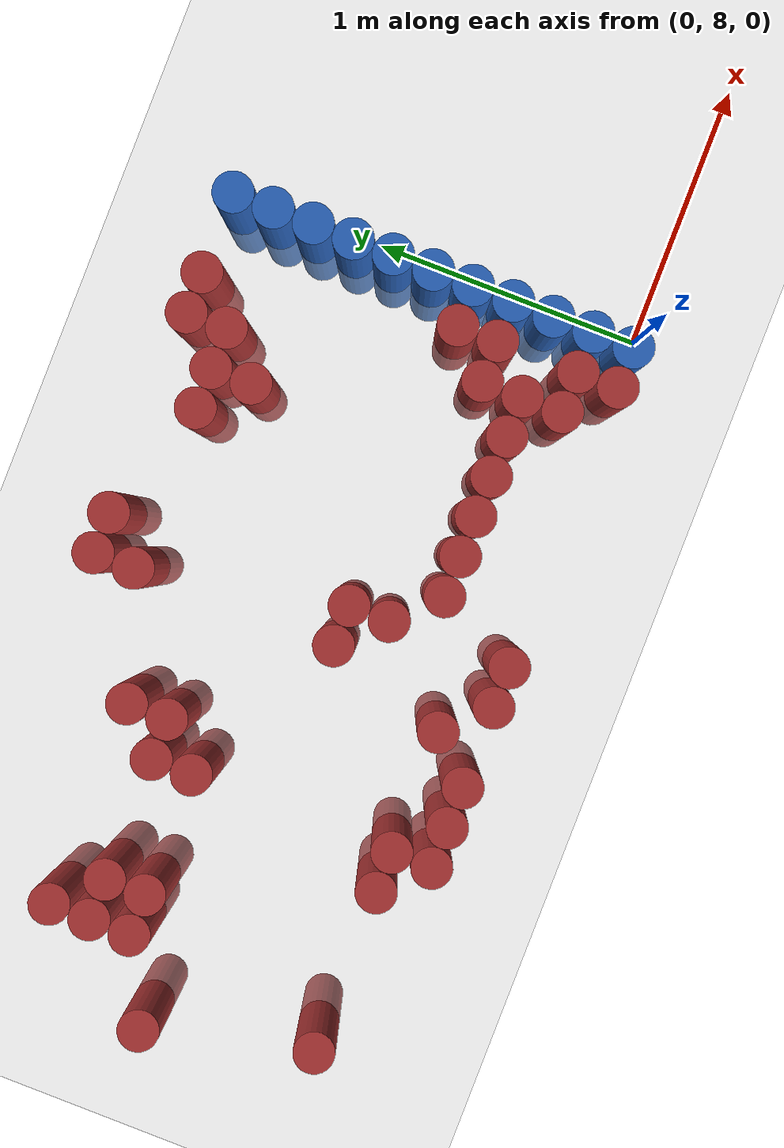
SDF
<sdf version="1.6">
 <world name="default">
  <model name="ground_plane">
   <static>1</static>
   <link name="link">
    <collision name="collision">
     <geometry><plane><normal>0 0 1</normal><size>100 100</size></plane></geometry>
     <surface><friction><ode><mu>100</mu><mu2>50</mu2></ode></friction></surface>
    </collision>
    <visual name="visual">
     <cast_shadows>0</cast_shadows>
     <geometry><plane><normal>0 0 1</normal><size>100 100</size></plane></geometry>
     <material>
      <script><uri>file://media/materials/scripts/gazebo.material</uri><name>Gazebo/Grey</name></script>
     </material>
    </visual>
   </link>
  </model>
  <model name="unit_cylinder_181">
   <static>1</static>
   <pose>-2.925000 8.775000 0.000000 0.000000 0.000000 0.000000</pose>
   <link name="link">
    <inertial>
     <mass>1</mass>
     <inertia><ixx>0.145833</ixx><ixy>0</ixy><ixz>0</ixz><iyy>0.145833</iyy><iyz>0</iyz><izz>0.125</izz></inertia>
    </inertial>
    <collision name="collision">
     <geometry><cylinder><radius>0.075000</radius><length>1</length></cylinder></geometry>
    </collision>
    <visual name="visual">
     <geometry><cylinder><radius>0.075000</radius><length>1</length></cylinder></geometry>
     <material>
      <ambient>0.648000 0.192000 0.192000 1</ambient>
      <diffuse>0.648000 0.192000 0.192000 1</diffuse>
     </material>
     <material>
      <script><name>Gazebo/Grey</name><uri>file://media/materials/scripts/gazebo.material</uri></script>
     </material>
    </visual>
   </link>
  </model>
  <model name="unit_cylinder_184">
   <static>1</static>
   <pose>-2.775000 8.175000 0.000000 0.000000 0.000000 0.000000</pose>
   <link name="link">
    <inertial>
     <mass>1</mass>
     <inertia><ixx>0.145833</ixx><ixy>0</ixy><ixz>0</ixz><iyy>0.145833</iyy><iyz>0</iyz><izz>0.125</izz></inertia>
    </inertial>
    <collision name="collision">
     <geometry><cylinder><radius>0.075000</radius><length>1</length></cylinder></geometry>
    </collision>
    <visual name="visual">
     <geometry><cylinder><radius>0.075000</radius><length>1</length></cylinder></geometry>
     <material>
      <ambient>0.648000 0.192000 0.192000 1</ambient>
      <diffuse>0.648000 0.192000 0.192000 1</diffuse>
     </material>
     <material>
      <script><name>Gazebo/Grey</name><uri>file://media/materials/scripts/gazebo.material</uri></script>
     </material>
    </visual>
   </link>
  </model>
  <model name="unit_cylinder_189">
   <static>1</static>
   <pose>-2.625000 8.925000 0.000000 0.000000 0.000000 0.000000</pose>
   <link name="link">
    <inertial>
     <mass>1</mass>
     <inertia><ixx>0.145833</ixx><ixy>0</ixy><ixz>0</ixz><iyy>0.145833</iyy><iyz>0</iyz><izz>0.125</izz></inertia>
    </inertial>
    <collision name="collision">
     <geometry><cylinder><radius>0.075000</radius><length>1</length></cylinder></geometry>
    </collision>
    <visual name="visual">
     <geometry><cylinder><radius>0.075000</radius><length>1</length></cylinder></geometry>
     <material>
      <ambient>0.648000 0.192000 0.192000 1</ambient>
      <diffuse>0.648000 0.192000 0.192000 1</diffuse>
     </material>
     <material>
      <script><name>Gazebo/Grey</name><uri>file://media/materials/scripts/gazebo.material</uri></script>
     </material>
    </visual>
   </link>
  </model>
  <model name="unit_cylinder_190">
   <static>1</static>
   <pose>-2.625000 9.075000 0.000000 0.000000 0.000000 0.000000</pose>
   <link name="link">
    <inertial>
     <mass>1</mass>
     <inertia><ixx>0.145833</ixx><ixy>0</ixy><ixz>0</ixz><iyy>0.145833</iyy><iyz>0</iyz><izz>0.125</izz></inertia>
    </inertial>
    <collision name="collision">
     <geometry><cylinder><radius>0.075000</radius><length>1</length></cylinder></geometry>
    </collision>
    <visual name="visual">
     <geometry><cylinder><radius>0.075000</radius><length>1</length></cylinder></geometry>
     <material>
      <ambient>0.648000 0.192000 0.192000 1</ambient>
      <diffuse>0.648000 0.192000 0.192000 1</diffuse>
     </material>
     <material>
      <script><name>Gazebo/Grey</name><uri>file://media/materials/scripts/gazebo.material</uri></script>
     </material>
    </visual>
   </link>
  </model>
  <model name="unit_cylinder_191">
   <static>1</static>
   <pose>-2.625000 9.225000 0.000000 0.000000 0.000000 0.000000</pose>
   <link name="link">
    <inertial>
     <mass>1</mass>
     <inertia><ixx>0.145833</ixx><ixy>0</ixy><ixz>0</ixz><iyy>0.145833</iyy><iyz>0</iyz><izz>0.125</izz></inertia>
    </inertial>
    <collision name="collision">
     <geometry><cylinder><radius>0.075000</radius><length>1</length></cylinder></geometry>
    </collision>
    <visual name="visual">
     <geometry><cylinder><radius>0.075000</radius><length>1</length></cylinder></geometry>
     <material>
      <ambient>0.648000 0.192000 0.192000 1</ambient>
      <diffuse>0.648000 0.192000 0.192000 1</diffuse>
     </material>
     <material>
      <script><name>Gazebo/Grey</name><uri>file://media/materials/scripts/gazebo.material</uri></script>
     </material>
    </visual>
   </link>
  </model>
  <model name="unit_cylinder_196">
   <static>1</static>
   <pose>-2.475000 8.925000 0.000000 0.000000 0.000000 0.000000</pose>
   <link name="link">
    <inertial>
     <mass>1</mass>
     <inertia><ixx>0.145833</ixx><ixy>0</ixy><ixz>0</ixz><iyy>0.145833</iyy><iyz>0</iyz><izz>0.125</izz></inertia>
    </inertial>
    <collision name="collision">
     <geometry><cylinder><radius>0.075000</radius><length>1</length></cylinder></geometry>
    </collision>
    <visual name="visual">
     <geometry><cylinder><radius>0.075000</radius><length>1</length></cylinder></geometry>
     <material>
      <ambient>0.648000 0.192000 0.192000 1</ambient>
      <diffuse>0.648000 0.192000 0.192000 1</diffuse>
     </material>
     <material>
      <script><name>Gazebo/Grey</name><uri>file://media/materials/scripts/gazebo.material</uri></script>
     </material>
    </visual>
   </link>
  </model>
  <model name="unit_cylinder_197">
   <static>1</static>
   <pose>-2.475000 9.075000 0.000000 0.000000 0.000000 0.000000</pose>
   <link name="link">
    <inertial>
     <mass>1</mass>
     <inertia><ixx>0.145833</ixx><ixy>0</ixy><ixz>0</ixz><iyy>0.145833</iyy><iyz>0</iyz><izz>0.125</izz></inertia>
    </inertial>
    <collision name="collision">
     <geometry><cylinder><radius>0.075000</radius><length>1</length></cylinder></geometry>
    </collision>
    <visual name="visual">
     <geometry><cylinder><radius>0.075000</radius><length>1</length></cylinder></geometry>
     <material>
      <ambient>0.648000 0.192000 0.192000 1</ambient>
      <diffuse>0.648000 0.192000 0.192000 1</diffuse>
     </material>
     <material>
      <script><name>Gazebo/Grey</name><uri>file://media/materials/scripts/gazebo.material</uri></script>
     </material>
    </visual>
   </link>
  </model>
  <model name="unit_cylinder_208">
   <static>1</static>
   <pose>-2.175000 8.175000 0.000000 0.000000 0.000000 0.000000</pose>
   <link name="link">
    <inertial>
     <mass>1</mass>
     <inertia><ixx>0.145833</ixx><ixy>0</ixy><ixz>0</ixz><iyy>0.145833</iyy><iyz>0</iyz><izz>0.125</izz></inertia>
    </inertial>
    <collision name="collision">
     <geometry><cylinder><radius>0.075000</radius><length>1</length></cylinder></geometry>
    </collision>
    <visual name="visual">
     <geometry><cylinder><radius>0.075000</radius><length>1</length></cylinder></geometry>
     <material>
      <ambient>0.648000 0.192000 0.192000 1</ambient>
      <diffuse>0.648000 0.192000 0.192000 1</diffuse>
     </material>
     <material>
      <script><name>Gazebo/Grey</name><uri>file://media/materials/scripts/gazebo.material</uri></script>
     </material>
    </visual>
   </link>
  </model>
  <model name="unit_cylinder_211">
   <static>1</static>
   <pose>-2.025000 8.025000 0.000000 0.000000 0.000000 0.000000</pose>
   <link name="link">
    <inertial>
     <mass>1</mass>
     <inertia><ixx>0.145833</ixx><ixy>0</ixy><ixz>0</ixz><iyy>0.145833</iyy><iyz>0</iyz><izz>0.125</izz></inertia>
    </inertial>
    <collision name="collision">
     <geometry><cylinder><radius>0.075000</radius><length>1</length></cylinder></geometry>
    </collision>
    <visual name="visual">
     <geometry><cylinder><radius>0.075000</radius><length>1</length></cylinder></geometry>
     <material>
      <ambient>0.648000 0.192000 0.192000 1</ambient>
      <diffuse>0.648000 0.192000 0.192000 1</diffuse>
     </material>
     <material>
      <script><name>Gazebo/Grey</name><uri>file://media/materials/scripts/gazebo.material</uri></script>
     </material>
    </visual>
   </link>
  </model>
  <model name="unit_cylinder_212">
   <static>1</static>
   <pose>-2.025000 8.175000 0.000000 0.000000 0.000000 0.000000</pose>
   <link name="link">
    <inertial>
     <mass>1</mass>
     <inertia><ixx>0.145833</ixx><ixy>0</ixy><ixz>0</ixz><iyy>0.145833</iyy><iyz>0</iyz><izz>0.125</izz></inertia>
    </inertial>
    <collision name="collision">
     <geometry><cylinder><radius>0.075000</radius><length>1</length></cylinder></geometry>
    </collision>
    <visual name="visual">
     <geometry><cylinder><radius>0.075000</radius><length>1</length></cylinder></geometry>
     <material>
      <ambient>0.648000 0.192000 0.192000 1</ambient>
      <diffuse>0.648000 0.192000 0.192000 1</diffuse>
     </material>
     <material>
      <script><name>Gazebo/Grey</name><uri>file://media/materials/scripts/gazebo.material</uri></script>
     </material>
    </visual>
   </link>
  </model>
  <model name="unit_cylinder_213">
   <static>1</static>
   <pose>-2.025000 8.925000 0.000000 0.000000 0.000000 0.000000</pose>
   <link name="link">
    <inertial>
     <mass>1</mass>
     <inertia><ixx>0.145833</ixx><ixy>0</ixy><ixz>0</ixz><iyy>0.145833</iyy><iyz>0</iyz><izz>0.125</izz></inertia>
    </inertial>
    <collision name="collision">
     <geometry><cylinder><radius>0.075000</radius><length>1</length></cylinder></geometry>
    </collision>
    <visual name="visual">
     <geometry><cylinder><radius>0.075000</radius><length>1</length></cylinder></geometry>
     <material>
      <ambient>0.648000 0.192000 0.192000 1</ambient>
      <diffuse>0.648000 0.192000 0.192000 1</diffuse>
     </material>
     <material>
      <script><name>Gazebo/Grey</name><uri>file://media/materials/scripts/gazebo.material</uri></script>
     </material>
    </visual>
   </link>
  </model>
  <model name="unit_cylinder_214">
   <static>1</static>
   <pose>-2.025000 9.075000 0.000000 0.000000 0.000000 0.000000</pose>
   <link name="link">
    <inertial>
     <mass>1</mass>
     <inertia><ixx>0.145833</ixx><ixy>0</ixy><ixz>0</ixz><iyy>0.145833</iyy><iyz>0</iyz><izz>0.125</izz></inertia>
    </inertial>
    <collision name="collision">
     <geometry><cylinder><radius>0.075000</radius><length>1</length></cylinder></geometry>
    </collision>
    <visual name="visual">
     <geometry><cylinder><radius>0.075000</radius><length>1</length></cylinder></geometry>
     <material>
      <ambient>0.648000 0.192000 0.192000 1</ambient>
      <diffuse>0.648000 0.192000 0.192000 1</diffuse>
     </material>
     <material>
      <script><name>Gazebo/Grey</name><uri>file://media/materials/scripts/gazebo.material</uri></script>
     </material>
    </visual>
   </link>
  </model>
  <model name="unit_cylinder_217">
   <static>1</static>
   <pose>-1.875000 8.025000 0.000000 0.000000 0.000000 0.000000</pose>
   <link name="link">
    <inertial>
     <mass>1</mass>
     <inertia><ixx>0.145833</ixx><ixy>0</ixy><ixz>0</ixz><iyy>0.145833</iyy><iyz>0</iyz><izz>0.125</izz></inertia>
    </inertial>
    <collision name="collision">
     <geometry><cylinder><radius>0.075000</radius><length>1</length></cylinder></geometry>
    </collision>
    <visual name="visual">
     <geometry><cylinder><radius>0.075000</radius><length>1</length></cylinder></geometry>
     <material>
      <ambient>0.648000 0.192000 0.192000 1</ambient>
      <diffuse>0.648000 0.192000 0.192000 1</diffuse>
     </material>
     <material>
      <script><name>Gazebo/Grey</name><uri>file://media/materials/scripts/gazebo.material</uri></script>
     </material>
    </visual>
   </link>
  </model>
  <model name="unit_cylinder_218">
   <static>1</static>
   <pose>-1.875000 9.075000 0.000000 0.000000 0.000000 0.000000</pose>
   <link name="link">
    <inertial>
     <mass>1</mass>
     <inertia><ixx>0.145833</ixx><ixy>0</ixy><ixz>0</ixz><iyy>0.145833</iyy><iyz>0</iyz><izz>0.125</izz></inertia>
    </inertial>
    <collision name="collision">
     <geometry><cylinder><radius>0.075000</radius><length>1</length></cylinder></geometry>
    </collision>
    <visual name="visual">
     <geometry><cylinder><radius>0.075000</radius><length>1</length></cylinder></geometry>
     <material>
      <ambient>0.648000 0.192000 0.192000 1</ambient>
      <diffuse>0.648000 0.192000 0.192000 1</diffuse>
     </material>
     <material>
      <script><name>Gazebo/Grey</name><uri>file://media/materials/scripts/gazebo.material</uri></script>
     </material>
    </visual>
   </link>
  </model>
  <model name="unit_cylinder_219">
   <static>1</static>
   <pose>-1.875000 9.225000 0.000000 0.000000 0.000000 0.000000</pose>
   <link name="link">
    <inertial>
     <mass>1</mass>
     <inertia><ixx>0.145833</ixx><ixy>0</ixy><ixz>0</ixz><iyy>0.145833</iyy><iyz>0</iyz><izz>0.125</izz></inertia>
    </inertial>
    <collision name="collision">
     <geometry><cylinder><radius>0.075000</radius><length>1</length></cylinder></geometry>
    </collision>
    <visual name="visual">
     <geometry><cylinder><radius>0.075000</radius><length>1</length></cylinder></geometry>
     <material>
      <ambient>0.648000 0.192000 0.192000 1</ambient>
      <diffuse>0.648000 0.192000 0.192000 1</diffuse>
     </material>
     <material>
      <script><name>Gazebo/Grey</name><uri>file://media/materials/scripts/gazebo.material</uri></script>
     </material>
    </visual>
   </link>
  </model>
  <model name="unit_cylinder_220">
   <static>1</static>
   <pose>-1.725000 8.025000 0.000000 0.000000 0.000000 0.000000</pose>
   <link name="link">
    <inertial>
     <mass>1</mass>
     <inertia><ixx>0.145833</ixx><ixy>0</ixy><ixz>0</ixz><iyy>0.145833</iyy><iyz>0</iyz><izz>0.125</izz></inertia>
    </inertial>
    <collision name="collision">
     <geometry><cylinder><radius>0.075000</radius><length>1</length></cylinder></geometry>
    </collision>
    <visual name="visual">
     <geometry><cylinder><radius>0.075000</radius><length>1</length></cylinder></geometry>
     <material>
      <ambient>0.648000 0.192000 0.192000 1</ambient>
      <diffuse>0.648000 0.192000 0.192000 1</diffuse>
     </material>
     <material>
      <script><name>Gazebo/Grey</name><uri>file://media/materials/scripts/gazebo.material</uri></script>
     </material>
    </visual>
   </link>
  </model>
  <model name="unit_cylinder_221">
   <static>1</static>
   <pose>-1.575000 8.175000 0.000000 0.000000 0.000000 0.000000</pose>
   <link name="link">
    <inertial>
     <mass>1</mass>
     <inertia><ixx>0.145833</ixx><ixy>0</ixy><ixz>0</ixz><iyy>0.145833</iyy><iyz>0</iyz><izz>0.125</izz></inertia>
    </inertial>
    <collision name="collision">
     <geometry><cylinder><radius>0.075000</radius><length>1</length></cylinder></geometry>
    </collision>
    <visual name="visual">
     <geometry><cylinder><radius>0.075000</radius><length>1</length></cylinder></geometry>
     <material>
      <ambient>0.648000 0.192000 0.192000 1</ambient>
      <diffuse>0.648000 0.192000 0.192000 1</diffuse>
     </material>
     <material>
      <script><name>Gazebo/Grey</name><uri>file://media/materials/scripts/gazebo.material</uri></script>
     </material>
    </visual>
   </link>
  </model>
  <model name="unit_cylinder_224">
   <static>1</static>
   <pose>-1.425000 8.025000 0.000000 0.000000 0.000000 0.000000</pose>
   <link name="link">
    <inertial>
     <mass>1</mass>
     <inertia><ixx>0.145833</ixx><ixy>0</ixy><ixz>0</ixz><iyy>0.145833</iyy><iyz>0</iyz><izz>0.125</izz></inertia>
    </inertial>
    <collision name="collision">
     <geometry><cylinder><radius>0.075000</radius><length>1</length></cylinder></geometry>
    </collision>
    <visual name="visual">
     <geometry><cylinder><radius>0.075000</radius><length>1</length></cylinder></geometry>
     <material>
      <ambient>0.648000 0.192000 0.192000 1</ambient>
      <diffuse>0.648000 0.192000 0.192000 1</diffuse>
     </material>
     <material>
      <script><name>Gazebo/Grey</name><uri>file://media/materials/scripts/gazebo.material</uri></script>
     </material>
    </visual>
   </link>
  </model>
  <model name="unit_cylinder_225">
   <static>1</static>
   <pose>-1.425000 8.625000 0.000000 0.000000 0.000000 0.000000</pose>
   <link name="link">
    <inertial>
     <mass>1</mass>
     <inertia><ixx>0.145833</ixx><ixy>0</ixy><ixz>0</ixz><iyy>0.145833</iyy><iyz>0</iyz><izz>0.125</izz></inertia>
    </inertial>
    <collision name="collision">
     <geometry><cylinder><radius>0.075000</radius><length>1</length></cylinder></geometry>
    </collision>
    <visual name="visual">
     <geometry><cylinder><radius>0.075000</radius><length>1</length></cylinder></geometry>
     <material>
      <ambient>0.648000 0.192000 0.192000 1</ambient>
      <diffuse>0.648000 0.192000 0.192000 1</diffuse>
     </material>
     <material>
      <script><name>Gazebo/Grey</name><uri>file://media/materials/scripts/gazebo.material</uri></script>
     </material>
    </visual>
   </link>
  </model>
  <model name="unit_cylinder_226">
   <static>1</static>
   <pose>-1.425000 9.375000 0.000000 0.000000 0.000000 0.000000</pose>
   <link name="link">
    <inertial>
     <mass>1</mass>
     <inertia><ixx>0.145833</ixx><ixy>0</ixy><ixz>0</ixz><iyy>0.145833</iyy><iyz>0</iyz><izz>0.125</izz></inertia>
    </inertial>
    <collision name="collision">
     <geometry><cylinder><radius>0.075000</radius><length>1</length></cylinder></geometry>
    </collision>
    <visual name="visual">
     <geometry><cylinder><radius>0.075000</radius><length>1</length></cylinder></geometry>
     <material>
      <ambient>0.648000 0.192000 0.192000 1</ambient>
      <diffuse>0.648000 0.192000 0.192000 1</diffuse>
     </material>
     <material>
      <script><name>Gazebo/Grey</name><uri>file://media/materials/scripts/gazebo.material</uri></script>
     </material>
    </visual>
   </link>
  </model>
  <model name="unit_cylinder_227">
   <static>1</static>
   <pose>-1.425000 9.525000 0.000000 0.000000 0.000000 0.000000</pose>
   <link name="link">
    <inertial>
     <mass>1</mass>
     <inertia><ixx>0.145833</ixx><ixy>0</ixy><ixz>0</ixz><iyy>0.145833</iyy><iyz>0</iyz><izz>0.125</izz></inertia>
    </inertial>
    <collision name="collision">
     <geometry><cylinder><radius>0.075000</radius><length>1</length></cylinder></geometry>
    </collision>
    <visual name="visual">
     <geometry><cylinder><radius>0.075000</radius><length>1</length></cylinder></geometry>
     <material>
      <ambient>0.648000 0.192000 0.192000 1</ambient>
      <diffuse>0.648000 0.192000 0.192000 1</diffuse>
     </material>
     <material>
      <script><name>Gazebo/Grey</name><uri>file://media/materials/scripts/gazebo.material</uri></script>
     </material>
    </visual>
   </link>
  </model>
  <model name="unit_cylinder_230">
   <static>1</static>
   <pose>-1.275000 8.025000 0.000000 0.000000 0.000000 0.000000</pose>
   <link name="link">
    <inertial>
     <mass>1</mass>
     <inertia><ixx>0.145833</ixx><ixy>0</ixy><ixz>0</ixz><iyy>0.145833</iyy><iyz>0</iyz><izz>0.125</izz></inertia>
    </inertial>
    <collision name="collision">
     <geometry><cylinder><radius>0.075000</radius><length>1</length></cylinder></geometry>
    </collision>
    <visual name="visual">
     <geometry><cylinder><radius>0.075000</radius><length>1</length></cylinder></geometry>
     <material>
      <ambient>0.648000 0.192000 0.192000 1</ambient>
      <diffuse>0.648000 0.192000 0.192000 1</diffuse>
     </material>
     <material>
      <script><name>Gazebo/Grey</name><uri>file://media/materials/scripts/gazebo.material</uri></script>
     </material>
    </visual>
   </link>
  </model>
  <model name="unit_cylinder_231">
   <static>1</static>
   <pose>-1.275000 8.475000 0.000000 0.000000 0.000000 0.000000</pose>
   <link name="link">
    <inertial>
     <mass>1</mass>
     <inertia><ixx>0.145833</ixx><ixy>0</ixy><ixz>0</ixz><iyy>0.145833</iyy><iyz>0</iyz><izz>0.125</izz></inertia>
    </inertial>
    <collision name="collision">
     <geometry><cylinder><radius>0.075000</radius><length>1</length></cylinder></geometry>
    </collision>
    <visual name="visual">
     <geometry><cylinder><radius>0.075000</radius><length>1</length></cylinder></geometry>
     <material>
      <ambient>0.648000 0.192000 0.192000 1</ambient>
      <diffuse>0.648000 0.192000 0.192000 1</diffuse>
     </material>
     <material>
      <script><name>Gazebo/Grey</name><uri>file://media/materials/scripts/gazebo.material</uri></script>
     </material>
    </visual>
   </link>
  </model>
  <model name="unit_cylinder_232">
   <static>1</static>
   <pose>-1.275000 8.625000 0.000000 0.000000 0.000000 0.000000</pose>
   <link name="link">
    <inertial>
     <mass>1</mass>
     <inertia><ixx>0.145833</ixx><ixy>0</ixy><ixz>0</ixz><iyy>0.145833</iyy><iyz>0</iyz><izz>0.125</izz></inertia>
    </inertial>
    <collision name="collision">
     <geometry><cylinder><radius>0.075000</radius><length>1</length></cylinder></geometry>
    </collision>
    <visual name="visual">
     <geometry><cylinder><radius>0.075000</radius><length>1</length></cylinder></geometry>
     <material>
      <ambient>0.648000 0.192000 0.192000 1</ambient>
      <diffuse>0.648000 0.192000 0.192000 1</diffuse>
     </material>
     <material>
      <script><name>Gazebo/Grey</name><uri>file://media/materials/scripts/gazebo.material</uri></script>
     </material>
    </visual>
   </link>
  </model>
  <model name="unit_cylinder_233">
   <static>1</static>
   <pose>-1.275000 9.525000 0.000000 0.000000 0.000000 0.000000</pose>
   <link name="link">
    <inertial>
     <mass>1</mass>
     <inertia><ixx>0.145833</ixx><ixy>0</ixy><ixz>0</ixz><iyy>0.145833</iyy><iyz>0</iyz><izz>0.125</izz></inertia>
    </inertial>
    <collision name="collision">
     <geometry><cylinder><radius>0.075000</radius><length>1</length></cylinder></geometry>
    </collision>
    <visual name="visual">
     <geometry><cylinder><radius>0.075000</radius><length>1</length></cylinder></geometry>
     <material>
      <ambient>0.648000 0.192000 0.192000 1</ambient>
      <diffuse>0.648000 0.192000 0.192000 1</diffuse>
     </material>
     <material>
      <script><name>Gazebo/Grey</name><uri>file://media/materials/scripts/gazebo.material</uri></script>
     </material>
    </visual>
   </link>
  </model>
  <model name="unit_cylinder_237">
   <static>1</static>
   <pose>-1.125000 8.325000 0.000000 0.000000 0.000000 0.000000</pose>
   <link name="link">
    <inertial>
     <mass>1</mass>
     <inertia><ixx>0.145833</ixx><ixy>0</ixy><ixz>0</ixz><iyy>0.145833</iyy><iyz>0</iyz><izz>0.125</izz></inertia>
    </inertial>
    <collision name="collision">
     <geometry><cylinder><radius>0.075000</radius><length>1</length></cylinder></geometry>
    </collision>
    <visual name="visual">
     <geometry><cylinder><radius>0.075000</radius><length>1</length></cylinder></geometry>
     <material>
      <ambient>0.648000 0.192000 0.192000 1</ambient>
      <diffuse>0.648000 0.192000 0.192000 1</diffuse>
     </material>
     <material>
      <script><name>Gazebo/Grey</name><uri>file://media/materials/scripts/gazebo.material</uri></script>
     </material>
    </visual>
   </link>
  </model>
  <model name="unit_cylinder_246">
   <static>1</static>
   <pose>-0.975000 8.325000 0.000000 0.000000 0.000000 0.000000</pose>
   <link name="link">
    <inertial>
     <mass>1</mass>
     <inertia><ixx>0.145833</ixx><ixy>0</ixy><ixz>0</ixz><iyy>0.145833</iyy><iyz>0</iyz><izz>0.125</izz></inertia>
    </inertial>
    <collision name="collision">
     <geometry><cylinder><radius>0.075000</radius><length>1</length></cylinder></geometry>
    </collision>
    <visual name="visual">
     <geometry><cylinder><radius>0.075000</radius><length>1</length></cylinder></geometry>
     <material>
      <ambient>0.648000 0.192000 0.192000 1</ambient>
      <diffuse>0.648000 0.192000 0.192000 1</diffuse>
     </material>
     <material>
      <script><name>Gazebo/Grey</name><uri>file://media/materials/scripts/gazebo.material</uri></script>
     </material>
    </visual>
   </link>
  </model>
  <model name="unit_cylinder_257">
   <static>1</static>
   <pose>-0.825000 8.325000 0.000000 0.000000 0.000000 0.000000</pose>
   <link name="link">
    <inertial>
     <mass>1</mass>
     <inertia><ixx>0.145833</ixx><ixy>0</ixy><ixz>0</ixz><iyy>0.145833</iyy><iyz>0</iyz><izz>0.125</izz></inertia>
    </inertial>
    <collision name="collision">
     <geometry><cylinder><radius>0.075000</radius><length>1</length></cylinder></geometry>
    </collision>
    <visual name="visual">
     <geometry><cylinder><radius>0.075000</radius><length>1</length></cylinder></geometry>
     <material>
      <ambient>0.648000 0.192000 0.192000 1</ambient>
      <diffuse>0.648000 0.192000 0.192000 1</diffuse>
     </material>
     <material>
      <script><name>Gazebo/Grey</name><uri>file://media/materials/scripts/gazebo.material</uri></script>
     </material>
    </visual>
   </link>
  </model>
  <model name="unit_cylinder_258">
   <static>1</static>
   <pose>-0.825000 9.375000 0.000000 0.000000 0.000000 0.000000</pose>
   <link name="link">
    <inertial>
     <mass>1</mass>
     <inertia><ixx>0.145833</ixx><ixy>0</ixy><ixz>0</ixz><iyy>0.145833</iyy><iyz>0</iyz><izz>0.125</izz></inertia>
    </inertial>
    <collision name="collision">
     <geometry><cylinder><radius>0.075000</radius><length>1</length></cylinder></geometry>
    </collision>
    <visual name="visual">
     <geometry><cylinder><radius>0.075000</radius><length>1</length></cylinder></geometry>
     <material>
      <ambient>0.648000 0.192000 0.192000 1</ambient>
      <diffuse>0.648000 0.192000 0.192000 1</diffuse>
     </material>
     <material>
      <script><name>Gazebo/Grey</name><uri>file://media/materials/scripts/gazebo.material</uri></script>
     </material>
    </visual>
   </link>
  </model>
  <model name="unit_cylinder_265">
   <static>1</static>
   <pose>-0.675000 8.325000 0.000000 0.000000 0.000000 0.000000</pose>
   <link name="link">
    <inertial>
     <mass>1</mass>
     <inertia><ixx>0.145833</ixx><ixy>0</ixy><ixz>0</ixz><iyy>0.145833</iyy><iyz>0</iyz><izz>0.125</izz></inertia>
    </inertial>
    <collision name="collision">
     <geometry><cylinder><radius>0.075000</radius><length>1</length></cylinder></geometry>
    </collision>
    <visual name="visual">
     <geometry><cylinder><radius>0.075000</radius><length>1</length></cylinder></geometry>
     <material>
      <ambient>0.648000 0.192000 0.192000 1</ambient>
      <diffuse>0.648000 0.192000 0.192000 1</diffuse>
     </material>
     <material>
      <script><name>Gazebo/Grey</name><uri>file://media/materials/scripts/gazebo.material</uri></script>
     </material>
    </visual>
   </link>
  </model>
  <model name="unit_cylinder_266">
   <static>1</static>
   <pose>-0.675000 9.225000 0.000000 0.000000 0.000000 0.000000</pose>
   <link name="link">
    <inertial>
     <mass>1</mass>
     <inertia><ixx>0.145833</ixx><ixy>0</ixy><ixz>0</ixz><iyy>0.145833</iyy><iyz>0</iyz><izz>0.125</izz></inertia>
    </inertial>
    <collision name="collision">
     <geometry><cylinder><radius>0.075000</radius><length>1</length></cylinder></geometry>
    </collision>
    <visual name="visual">
     <geometry><cylinder><radius>0.075000</radius><length>1</length></cylinder></geometry>
     <material>
      <ambient>0.648000 0.192000 0.192000 1</ambient>
      <diffuse>0.648000 0.192000 0.192000 1</diffuse>
     </material>
     <material>
      <script><name>Gazebo/Grey</name><uri>file://media/materials/scripts/gazebo.material</uri></script>
     </material>
    </visual>
   </link>
  </model>
  <model name="unit_cylinder_267">
   <static>1</static>
   <pose>-0.675000 9.375000 0.000000 0.000000 0.000000 0.000000</pose>
   <link name="link">
    <inertial>
     <mass>1</mass>
     <inertia><ixx>0.145833</ixx><ixy>0</ixy><ixz>0</ixz><iyy>0.145833</iyy><iyz>0</iyz><izz>0.125</izz></inertia>
    </inertial>
    <collision name="collision">
     <geometry><cylinder><radius>0.075000</radius><length>1</length></cylinder></geometry>
    </collision>
    <visual name="visual">
     <geometry><cylinder><radius>0.075000</radius><length>1</length></cylinder></geometry>
     <material>
      <ambient>0.648000 0.192000 0.192000 1</ambient>
      <diffuse>0.648000 0.192000 0.192000 1</diffuse>
     </material>
     <material>
      <script><name>Gazebo/Grey</name><uri>file://media/materials/scripts/gazebo.material</uri></script>
     </material>
    </visual>
   </link>
  </model>
  <model name="unit_cylinder_271">
   <static>1</static>
   <pose>-0.525000 8.325000 0.000000 0.000000 0.000000 0.000000</pose>
   <link name="link">
    <inertial>
     <mass>1</mass>
     <inertia><ixx>0.145833</ixx><ixy>0</ixy><ixz>0</ixz><iyy>0.145833</iyy><iyz>0</iyz><izz>0.125</izz></inertia>
    </inertial>
    <collision name="collision">
     <geometry><cylinder><radius>0.075000</radius><length>1</length></cylinder></geometry>
    </collision>
    <visual name="visual">
     <geometry><cylinder><radius>0.075000</radius><length>1</length></cylinder></geometry>
     <material>
      <ambient>0.648000 0.192000 0.192000 1</ambient>
      <diffuse>0.648000 0.192000 0.192000 1</diffuse>
     </material>
     <material>
      <script><name>Gazebo/Grey</name><uri>file://media/materials/scripts/gazebo.material</uri></script>
     </material>
    </visual>
   </link>
  </model>
  <model name="unit_cylinder_272">
   <static>1</static>
   <pose>-0.525000 9.375000 0.000000 0.000000 0.000000 0.000000</pose>
   <link name="link">
    <inertial>
     <mass>1</mass>
     <inertia><ixx>0.145833</ixx><ixy>0</ixy><ixz>0</ixz><iyy>0.145833</iyy><iyz>0</iyz><izz>0.125</izz></inertia>
    </inertial>
    <collision name="collision">
     <geometry><cylinder><radius>0.075000</radius><length>1</length></cylinder></geometry>
    </collision>
    <visual name="visual">
     <geometry><cylinder><radius>0.075000</radius><length>1</length></cylinder></geometry>
     <material>
      <ambient>0.648000 0.192000 0.192000 1</ambient>
      <diffuse>0.648000 0.192000 0.192000 1</diffuse>
     </material>
     <material>
      <script><name>Gazebo/Grey</name><uri>file://media/materials/scripts/gazebo.material</uri></script>
     </material>
    </visual>
   </link>
  </model>
  <model name="unit_cylinder_273">
   <static>1</static>
   <pose>-0.525000 9.525000 0.000000 0.000000 0.000000 0.000000</pose>
   <link name="link">
    <inertial>
     <mass>1</mass>
     <inertia><ixx>0.145833</ixx><ixy>0</ixy><ixz>0</ixz><iyy>0.145833</iyy><iyz>0</iyz><izz>0.125</izz></inertia>
    </inertial>
    <collision name="collision">
     <geometry><cylinder><radius>0.075000</radius><length>1</length></cylinder></geometry>
    </collision>
    <visual name="visual">
     <geometry><cylinder><radius>0.075000</radius><length>1</length></cylinder></geometry>
     <material>
      <ambient>0.648000 0.192000 0.192000 1</ambient>
      <diffuse>0.648000 0.192000 0.192000 1</diffuse>
     </material>
     <material>
      <script><name>Gazebo/Grey</name><uri>file://media/materials/scripts/gazebo.material</uri></script>
     </material>
    </visual>
   </link>
  </model>
  <model name="unit_cylinder_277">
   <static>1</static>
   <pose>-0.375000 8.175000 0.000000 0.000000 0.000000 0.000000</pose>
   <link name="link">
    <inertial>
     <mass>1</mass>
     <inertia><ixx>0.145833</ixx><ixy>0</ixy><ixz>0</ixz><iyy>0.145833</iyy><iyz>0</iyz><izz>0.125</izz></inertia>
    </inertial>
    <collision name="collision">
     <geometry><cylinder><radius>0.075000</radius><length>1</length></cylinder></geometry>
    </collision>
    <visual name="visual">
     <geometry><cylinder><radius>0.075000</radius><length>1</length></cylinder></geometry>
     <material>
      <ambient>0.648000 0.192000 0.192000 1</ambient>
      <diffuse>0.648000 0.192000 0.192000 1</diffuse>
     </material>
     <material>
      <script><name>Gazebo/Grey</name><uri>file://media/materials/scripts/gazebo.material</uri></script>
     </material>
    </visual>
   </link>
  </model>
  <model name="unit_cylinder_278">
   <static>1</static>
   <pose>-0.375000 8.325000 0.000000 0.000000 0.000000 0.000000</pose>
   <link name="link">
    <inertial>
     <mass>1</mass>
     <inertia><ixx>0.145833</ixx><ixy>0</ixy><ixz>0</ixz><iyy>0.145833</iyy><iyz>0</iyz><izz>0.125</izz></inertia>
    </inertial>
    <collision name="collision">
     <geometry><cylinder><radius>0.075000</radius><length>1</length></cylinder></geometry>
    </collision>
    <visual name="visual">
     <geometry><cylinder><radius>0.075000</radius><length>1</length></cylinder></geometry>
     <material>
      <ambient>0.648000 0.192000 0.192000 1</ambient>
      <diffuse>0.648000 0.192000 0.192000 1</diffuse>
     </material>
     <material>
      <script><name>Gazebo/Grey</name><uri>file://media/materials/scripts/gazebo.material</uri></script>
     </material>
    </visual>
   </link>
  </model>
  <model name="unit_cylinder_279">
   <static>1</static>
   <pose>-0.375000 8.475000 0.000000 0.000000 0.000000 0.000000</pose>
   <link name="link">
    <inertial>
     <mass>1</mass>
     <inertia><ixx>0.145833</ixx><ixy>0</ixy><ixz>0</ixz><iyy>0.145833</iyy><iyz>0</iyz><izz>0.125</izz></inertia>
    </inertial>
    <collision name="collision">
     <geometry><cylinder><radius>0.075000</radius><length>1</length></cylinder></geometry>
    </collision>
    <visual name="visual">
     <geometry><cylinder><radius>0.075000</radius><length>1</length></cylinder></geometry>
     <material>
      <ambient>0.648000 0.192000 0.192000 1</ambient>
      <diffuse>0.648000 0.192000 0.192000 1</diffuse>
     </material>
     <material>
      <script><name>Gazebo/Grey</name><uri>file://media/materials/scripts/gazebo.material</uri></script>
     </material>
    </visual>
   </link>
  </model>
  <model name="unit_cylinder_280">
   <static>1</static>
   <pose>-0.375000 9.525000 0.000000 0.000000 0.000000 0.000000</pose>
   <link name="link">
    <inertial>
     <mass>1</mass>
     <inertia><ixx>0.145833</ixx><ixy>0</ixy><ixz>0</ixz><iyy>0.145833</iyy><iyz>0</iyz><izz>0.125</izz></inertia>
    </inertial>
    <collision name="collision">
     <geometry><cylinder><radius>0.075000</radius><length>1</length></cylinder></geometry>
    </collision>
    <visual name="visual">
     <geometry><cylinder><radius>0.075000</radius><length>1</length></cylinder></geometry>
     <material>
      <ambient>0.648000 0.192000 0.192000 1</ambient>
      <diffuse>0.648000 0.192000 0.192000 1</diffuse>
     </material>
     <material>
      <script><name>Gazebo/Grey</name><uri>file://media/materials/scripts/gazebo.material</uri></script>
     </material>
    </visual>
   </link>
  </model>
  <model name="unit_cylinder_289">
   <static>1</static>
   <pose>-0.225000 8.025000 0.000000 0.000000 0.000000 0.000000</pose>
   <link name="link">
    <inertial>
     <mass>1</mass>
     <inertia><ixx>0.145833</ixx><ixy>0</ixy><ixz>0</ixz><iyy>0.145833</iyy><iyz>0</iyz><izz>0.125</izz></inertia>
    </inertial>
    <collision name="collision">
     <geometry><cylinder><radius>0.075000</radius><length>1</length></cylinder></geometry>
    </collision>
    <visual name="visual">
     <geometry><cylinder><radius>0.075000</radius><length>1</length></cylinder></geometry>
     <material>
      <ambient>0.648000 0.192000 0.192000 1</ambient>
      <diffuse>0.648000 0.192000 0.192000 1</diffuse>
     </material>
     <material>
      <script><name>Gazebo/Grey</name><uri>file://media/materials/scripts/gazebo.material</uri></script>
     </material>
    </visual>
   </link>
  </model>
  <model name="unit_cylinder_290">
   <static>1</static>
   <pose>-0.225000 8.175000 0.000000 0.000000 0.000000 0.000000</pose>
   <link name="link">
    <inertial>
     <mass>1</mass>
     <inertia><ixx>0.145833</ixx><ixy>0</ixy><ixz>0</ixz><iyy>0.145833</iyy><iyz>0</iyz><izz>0.125</izz></inertia>
    </inertial>
    <collision name="collision">
     <geometry><cylinder><radius>0.075000</radius><length>1</length></cylinder></geometry>
    </collision>
    <visual name="visual">
     <geometry><cylinder><radius>0.075000</radius><length>1</length></cylinder></geometry>
     <material>
      <ambient>0.648000 0.192000 0.192000 1</ambient>
      <diffuse>0.648000 0.192000 0.192000 1</diffuse>
     </material>
     <material>
      <script><name>Gazebo/Grey</name><uri>file://media/materials/scripts/gazebo.material</uri></script>
     </material>
    </visual>
   </link>
  </model>
  <model name="unit_cylinder_291">
   <static>1</static>
   <pose>-0.225000 8.475000 0.000000 0.000000 0.000000 0.000000</pose>
   <link name="link">
    <inertial>
     <mass>1</mass>
     <inertia><ixx>0.145833</ixx><ixy>0</ixy><ixz>0</ixz><iyy>0.145833</iyy><iyz>0</iyz><izz>0.125</izz></inertia>
    </inertial>
    <collision name="collision">
     <geometry><cylinder><radius>0.075000</radius><length>1</length></cylinder></geometry>
    </collision>
    <visual name="visual">
     <geometry><cylinder><radius>0.075000</radius><length>1</length></cylinder></geometry>
     <material>
      <ambient>0.648000 0.192000 0.192000 1</ambient>
      <diffuse>0.648000 0.192000 0.192000 1</diffuse>
     </material>
     <material>
      <script><name>Gazebo/Grey</name><uri>file://media/materials/scripts/gazebo.material</uri></script>
     </material>
    </visual>
   </link>
  </model>
  <model name="unit_cylinder_292">
   <static>1</static>
   <pose>-0.225000 8.625000 0.000000 0.000000 0.000000 0.000000</pose>
   <link name="link">
    <inertial>
     <mass>1</mass>
     <inertia><ixx>0.145833</ixx><ixy>0</ixy><ixz>0</ixz><iyy>0.145833</iyy><iyz>0</iyz><izz>0.125</izz></inertia>
    </inertial>
    <collision name="collision">
     <geometry><cylinder><radius>0.075000</radius><length>1</length></cylinder></geometry>
    </collision>
    <visual name="visual">
     <geometry><cylinder><radius>0.075000</radius><length>1</length></cylinder></geometry>
     <material>
      <ambient>0.648000 0.192000 0.192000 1</ambient>
      <diffuse>0.648000 0.192000 0.192000 1</diffuse>
     </material>
     <material>
      <script><name>Gazebo/Grey</name><uri>file://media/materials/scripts/gazebo.material</uri></script>
     </material>
    </visual>
   </link>
  </model>
  <model name="unit_cylinder_312">
   <static>1</static>
   <pose>-0.075000 8.025000 0.000000 0.000000 0.000000 0.000000</pose>
   <link name="link">
    <inertial>
     <mass>1</mass>
     <inertia><ixx>0.145833</ixx><ixy>0</ixy><ixz>0</ixz><iyy>0.145833</iyy><iyz>0</iyz><izz>0.125</izz></inertia>
    </inertial>
    <collision name="collision">
     <geometry><cylinder><radius>0.075000</radius><length>1</length></cylinder></geometry>
    </collision>
    <visual name="visual">
     <geometry><cylinder><radius>0.075000</radius><length>1</length></cylinder></geometry>
     <material>
      <ambient>0.152000 0.379000 0.720000 1</ambient>
      <diffuse>0.152000 0.379000 0.720000 1</diffuse>
     </material>
     <material>
      <script><name>Gazebo/Grey</name><uri>file://media/materials/scripts/gazebo.material</uri></script>
     </material>
    </visual>
   </link>
  </model>
  <model name="unit_cylinder_313">
   <static>1</static>
   <pose>-0.075000 8.175000 0.000000 0.000000 0.000000 0.000000</pose>
   <link name="link">
    <inertial>
     <mass>1</mass>
     <inertia><ixx>0.145833</ixx><ixy>0</ixy><ixz>0</ixz><iyy>0.145833</iyy><iyz>0</iyz><izz>0.125</izz></inertia>
    </inertial>
    <collision name="collision">
     <geometry><cylinder><radius>0.075000</radius><length>1</length></cylinder></geometry>
    </collision>
    <visual name="visual">
     <geometry><cylinder><radius>0.075000</radius><length>1</length></cylinder></geometry>
     <material>
      <ambient>0.152000 0.379000 0.720000 1</ambient>
      <diffuse>0.152000 0.379000 0.720000 1</diffuse>
     </material>
     <material>
      <script><name>Gazebo/Grey</name><uri>file://media/materials/scripts/gazebo.material</uri></script>
     </material>
    </visual>
   </link>
  </model>
  <model name="unit_cylinder_314">
   <static>1</static>
   <pose>-0.075000 8.325000 0.000000 0.000000 0.000000 0.000000</pose>
   <link name="link">
    <inertial>
     <mass>1</mass>
     <inertia><ixx>0.145833</ixx><ixy>0</ixy><ixz>0</ixz><iyy>0.145833</iyy><iyz>0</iyz><izz>0.125</izz></inertia>
    </inertial>
    <collision name="collision">
     <geometry><cylinder><radius>0.075000</radius><length>1</length></cylinder></geometry>
    </collision>
    <visual name="visual">
     <geometry><cylinder><radius>0.075000</radius><length>1</length></cylinder></geometry>
     <material>
      <ambient>0.152000 0.379000 0.720000 1</ambient>
      <diffuse>0.152000 0.379000 0.720000 1</diffuse>
     </material>
     <material>
      <script><name>Gazebo/Grey</name><uri>file://media/materials/scripts/gazebo.material</uri></script>
     </material>
    </visual>
   </link>
  </model>
  <model name="unit_cylinder_315">
   <static>1</static>
   <pose>-0.075000 8.475000 0.000000 0.000000 0.000000 0.000000</pose>
   <link name="link">
    <inertial>
     <mass>1</mass>
     <inertia><ixx>0.145833</ixx><ixy>0</ixy><ixz>0</ixz><iyy>0.145833</iyy><iyz>0</iyz><izz>0.125</izz></inertia>
    </inertial>
    <collision name="collision">
     <geometry><cylinder><radius>0.075000</radius><length>1</length></cylinder></geometry>
    </collision>
    <visual name="visual">
     <geometry><cylinder><radius>0.075000</radius><length>1</length></cylinder></geometry>
     <material>
      <ambient>0.152000 0.379000 0.720000 1</ambient>
      <diffuse>0.152000 0.379000 0.720000 1</diffuse>
     </material>
     <material>
      <script><name>Gazebo/Grey</name><uri>file://media/materials/scripts/gazebo.material</uri></script>
     </material>
    </visual>
   </link>
  </model>
  <model name="unit_cylinder_316">
   <static>1</static>
   <pose>-0.075000 8.625000 0.000000 0.000000 0.000000 0.000000</pose>
   <link name="link">
    <inertial>
     <mass>1</mass>
     <inertia><ixx>0.145833</ixx><ixy>0</ixy><ixz>0</ixz><iyy>0.145833</iyy><iyz>0</iyz><izz>0.125</izz></inertia>
    </inertial>
    <collision name="collision">
     <geometry><cylinder><radius>0.075000</radius><length>1</length></cylinder></geometry>
    </collision>
    <visual name="visual">
     <geometry><cylinder><radius>0.075000</radius><length>1</length></cylinder></geometry>
     <material>
      <ambient>0.152000 0.379000 0.720000 1</ambient>
      <diffuse>0.152000 0.379000 0.720000 1</diffuse>
     </material>
     <material>
      <script><name>Gazebo/Grey</name><uri>file://media/materials/scripts/gazebo.material</uri></script>
     </material>
    </visual>
   </link>
  </model>
  <model name="unit_cylinder_317">
   <static>1</static>
   <pose>-0.075000 8.775000 0.000000 0.000000 0.000000 0.000000</pose>
   <link name="link">
    <inertial>
     <mass>1</mass>
     <inertia><ixx>0.145833</ixx><ixy>0</ixy><ixz>0</ixz><iyy>0.145833</iyy><iyz>0</iyz><izz>0.125</izz></inertia>
    </inertial>
    <collision name="collision">
     <geometry><cylinder><radius>0.075000</radius><length>1</length></cylinder></geometry>
    </collision>
    <visual name="visual">
     <geometry><cylinder><radius>0.075000</radius><length>1</length></cylinder></geometry>
     <material>
      <ambient>0.152000 0.379000 0.720000 1</ambient>
      <diffuse>0.152000 0.379000 0.720000 1</diffuse>
     </material>
     <material>
      <script><name>Gazebo/Grey</name><uri>file://media/materials/scripts/gazebo.material</uri></script>
     </material>
    </visual>
   </link>
  </model>
  <model name="unit_cylinder_318">
   <static>1</static>
   <pose>-0.075000 8.925000 0.000000 0.000000 0.000000 0.000000</pose>
   <link name="link">
    <inertial>
     <mass>1</mass>
     <inertia><ixx>0.145833</ixx><ixy>0</ixy><ixz>0</ixz><iyy>0.145833</iyy><iyz>0</iyz><izz>0.125</izz></inertia>
    </inertial>
    <collision name="collision">
     <geometry><cylinder><radius>0.075000</radius><length>1</length></cylinder></geometry>
    </collision>
    <visual name="visual">
     <geometry><cylinder><radius>0.075000</radius><length>1</length></cylinder></geometry>
     <material>
      <ambient>0.152000 0.379000 0.720000 1</ambient>
      <diffuse>0.152000 0.379000 0.720000 1</diffuse>
     </material>
     <material>
      <script><name>Gazebo/Grey</name><uri>file://media/materials/scripts/gazebo.material</uri></script>
     </material>
    </visual>
   </link>
  </model>
  <model name="unit_cylinder_319">
   <static>1</static>
   <pose>-0.075000 9.075000 0.000000 0.000000 0.000000 0.000000</pose>
   <link name="link">
    <inertial>
     <mass>1</mass>
     <inertia><ixx>0.145833</ixx><ixy>0</ixy><ixz>0</ixz><iyy>0.145833</iyy><iyz>0</iyz><izz>0.125</izz></inertia>
    </inertial>
    <collision name="collision">
     <geometry><cylinder><radius>0.075000</radius><length>1</length></cylinder></geometry>
    </collision>
    <visual name="visual">
     <geometry><cylinder><radius>0.075000</radius><length>1</length></cylinder></geometry>
     <material>
      <ambient>0.152000 0.379000 0.720000 1</ambient>
      <diffuse>0.152000 0.379000 0.720000 1</diffuse>
     </material>
     <material>
      <script><name>Gazebo/Grey</name><uri>file://media/materials/scripts/gazebo.material</uri></script>
     </material>
    </visual>
   </link>
  </model>
  <model name="unit_cylinder_320">
   <static>1</static>
   <pose>-0.075000 9.225000 0.000000 0.000000 0.000000 0.000000</pose>
   <link name="link">
    <inertial>
     <mass>1</mass>
     <inertia><ixx>0.145833</ixx><ixy>0</ixy><ixz>0</ixz><iyy>0.145833</iyy><iyz>0</iyz><izz>0.125</izz></inertia>
    </inertial>
    <collision name="collision">
     <geometry><cylinder><radius>0.075000</radius><length>1</length></cylinder></geometry>
    </collision>
    <visual name="visual">
     <geometry><cylinder><radius>0.075000</radius><length>1</length></cylinder></geometry>
     <material>
      <ambient>0.152000 0.379000 0.720000 1</ambient>
      <diffuse>0.152000 0.379000 0.720000 1</diffuse>
     </material>
     <material>
      <script><name>Gazebo/Grey</name><uri>file://media/materials/scripts/gazebo.material</uri></script>
     </material>
    </visual>
   </link>
  </model>
  <model name="unit_cylinder_321">
   <static>1</static>
   <pose>-0.075000 9.375000 0.000000 0.000000 0.000000 0.000000</pose>
   <link name="link">
    <inertial>
     <mass>1</mass>
     <inertia><ixx>0.145833</ixx><ixy>0</ixy><ixz>0</ixz><iyy>0.145833</iyy><iyz>0</iyz><izz>0.125</izz></inertia>
    </inertial>
    <collision name="collision">
     <geometry><cylinder><radius>0.075000</radius><length>1</length></cylinder></geometry>
    </collision>
    <visual name="visual">
     <geometry><cylinder><radius>0.075000</radius><length>1</length></cylinder></geometry>
     <material>
      <ambient>0.152000 0.379000 0.720000 1</ambient>
      <diffuse>0.152000 0.379000 0.720000 1</diffuse>
     </material>
     <material>
      <script><name>Gazebo/Grey</name><uri>file://media/materials/scripts/gazebo.material</uri></script>
     </material>
    </visual>
   </link>
  </model>
  <model name="unit_cylinder_322">
   <static>1</static>
   <pose>-0.075000 9.525000 0.000000 0.000000 0.000000 0.000000</pose>
   <link name="link">
    <inertial>
     <mass>1</mass>
     <inertia><ixx>0.145833</ixx><ixy>0</ixy><ixz>0</ixz><iyy>0.145833</iyy><iyz>0</iyz><izz>0.125</izz></inertia>
    </inertial>
    <collision name="collision">
     <geometry><cylinder><radius>0.075000</radius><length>1</length></cylinder></geometry>
    </collision>
    <visual name="visual">
     <geometry><cylinder><radius>0.075000</radius><length>1</length></cylinder></geometry>
     <material>
      <ambient>0.152000 0.379000 0.720000 1</ambient>
      <diffuse>0.152000 0.379000 0.720000 1</diffuse>
     </material>
     <material>
      <script><name>Gazebo/Grey</name><uri>file://media/materials/scripts/gazebo.material</uri></script>
     </material>
    </visual>
   </link>
  </model>
 </world>
</sdf>
